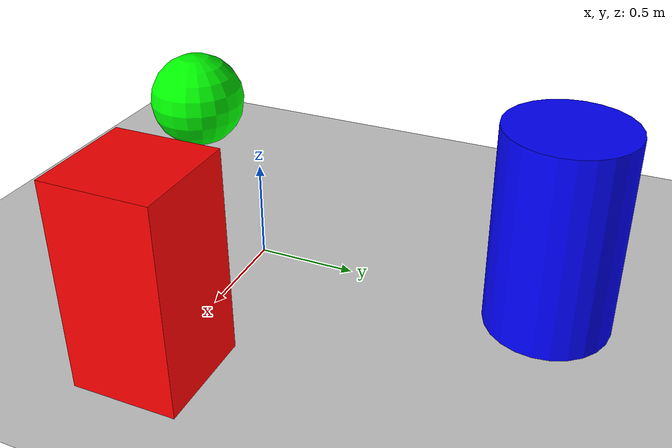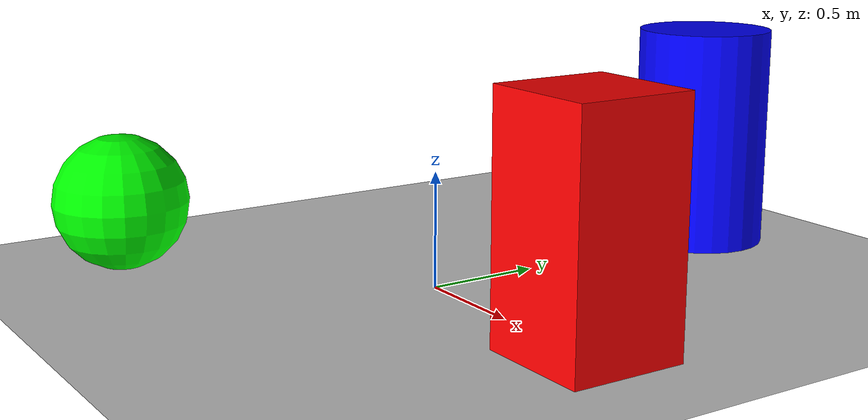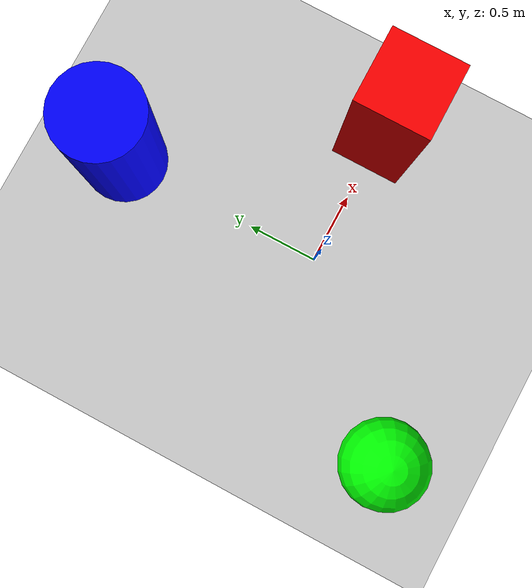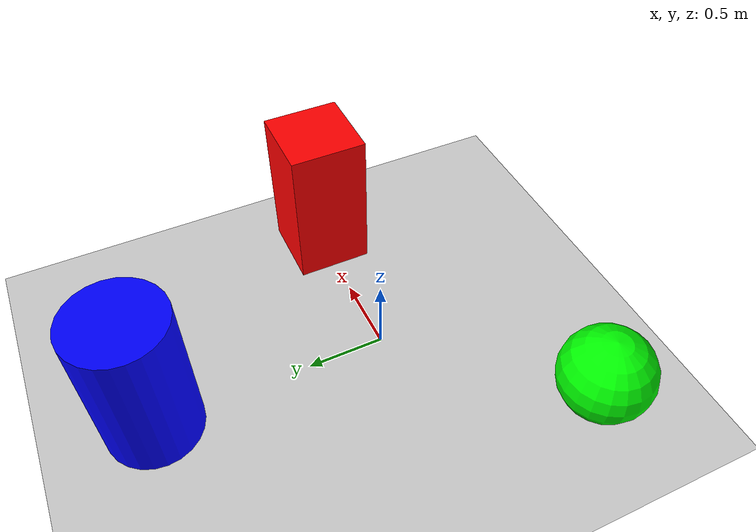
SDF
<?xml version="1.0" ?>
<sdf version="1.6">
  <world name="robot_world">

    <!-- Physics settings -->
    <physics name="default_physics" default="0" type="ode">
      <max_step_size>0.001</max_step_size>
      <real_time_factor>1</real_time_factor>
      <real_time_update_rate>1000</real_time_update_rate>
    </physics>

    <!-- Lighting -->
    <light name="sun" type="directional">
      <cast_shadows>1</cast_shadows>
      <pose>0 0 10 0 0 0</pose>
      <diffuse>0.8 0.8 0.8 1</diffuse>
      <specular>0.8 0.8 0.8 1</specular>
      <attenuation>
        <range>1000</range>
        <constant>0.9</constant>
        <linear>0.01</linear>
        <quadratic>0.001</quadratic>
      </attenuation>
      <direction>-0.5 0.1 -0.9</direction>
    </light>

    <!-- Ground plane -->
    <model name="ground_plane">
      <static>true</static>
      <link name="link">
        <collision name="collision">
          <geometry>
            <plane>
              <normal>0 0 1</normal>
              <size>100 100</size>
            </plane>
          </geometry>
        </collision>
        <visual name="visual">
          <geometry>
            <plane>
              <normal>0 0 1</normal>
              <size>100 100</size>
            </plane>
          </geometry>
          <material>
            <ambient>0.8 0.8 0.8 1</ambient>
            <diffuse>0.8 0.8 0.8 1</diffuse>
            <specular>0.8 0.8 0.8 1</specular>
          </material>
        </visual>
      </link>
    </model>

    <!-- Test objects for the robot to observe -->
    <model name="red_box">
      <pose>1 0 0.5 0 0 0</pose>
      <static>true</static>
      <link name="link">
        <collision name="collision">
          <geometry>
            <box>
              <size>0.5 0.5 1</size>
            </box>
          </geometry>
        </collision>
        <visual name="visual">
          <geometry>
            <box>
              <size>0.5 0.5 1</size>
            </box>
          </geometry>
          <material>
            <ambient>1 0 0 1</ambient>
            <diffuse>1 0 0 1</diffuse>
            <specular>1 0 0 1</specular>
          </material>
        </visual>
      </link>
    </model>

    <model name="blue_cylinder">
      <pose>0 1.5 0.5 0 0 0</pose>
      <static>true</static>
      <link name="link">
        <collision name="collision">
          <geometry>
            <cylinder>
              <radius>0.3</radius>
              <length>1</length>
            </cylinder>
          </geometry>
        </collision>
        <visual name="visual">
          <geometry>
            <cylinder>
              <radius>0.3</radius>
              <length>1</length>
            </cylinder>
          </geometry>
          <material>
            <ambient>0 0 1 1</ambient>
            <diffuse>0 0 1 1</diffuse>
            <specular>0 0 1 1</specular>
          </material>
        </visual>
      </link>
    </model>

    <model name="green_sphere">
      <pose>-1 -1 0.3 0 0 0</pose>
      <static>true</static>
      <link name="link">
        <collision name="collision">
          <geometry>
            <sphere>
              <radius>0.3</radius>
            </sphere>
          </geometry>
        </collision>
        <visual name="visual">
          <geometry>
            <sphere>
              <radius>0.3</radius>
            </sphere>
          </geometry>
          <material>
            <ambient>0 1 0 1</ambient>
            <diffuse>0 1 0 1</diffuse>
            <specular>0 1 0 1</specular>
          </material>
        </visual>
      </link>
    </model>

    <!-- Scene settings -->
    <scene>
      <ambient>0.4 0.4 0.4 1</ambient>
      <background>0.7 0.7 1 1</background>
      <shadows>1</shadows>
    </scene>

    <!-- GUI settings -->
    <gui fullscreen="0">
      <camera name="user_camera">
        <pose>3 -3 2 0 0.3 2.3</pose>
        <view_controller>orbit</view_controller>
        <projection_type>perspective</projection_type>
      </camera>
    </gui>

  </world>
</sdf>
